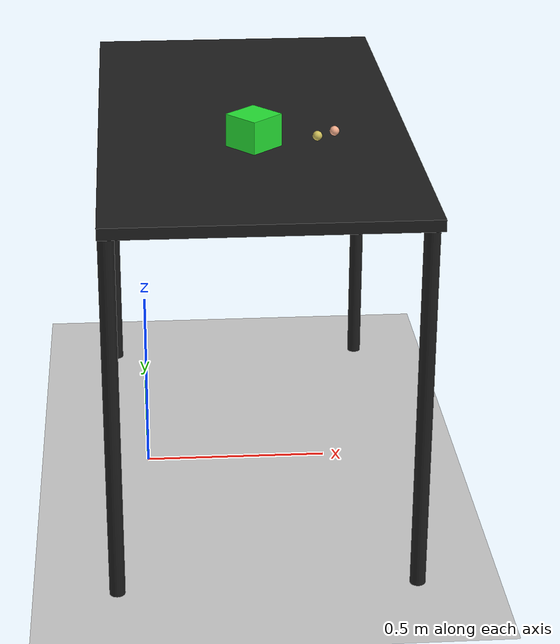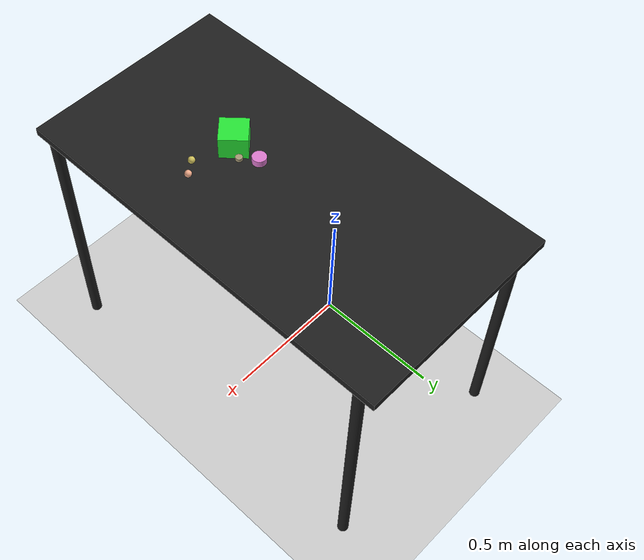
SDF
<?xml version="1.0" ?>
<sdf version="1.6">
  <world name="arm_world">
    <plugin filename="gz-sim-physics-system" name="gz::sim::systems::Physics">
      <engine>
        <filename>libgz-physics-bullet-featherstone-plugin.so</filename>
      </engine>
    </plugin>
    <plugin filename="gz-sim-user-commands-system" name="gz::sim::systems::UserCommands"/>
    <plugin filename="gz-sim-scene-broadcaster-system" name="gz::sim::systems::SceneBroadcaster"/>
    <plugin filename="gz-sim-sensors-system" name="gz::sim::systems::Sensors">
      <render_engine>ogre2</render_engine>
    </plugin>
    <gravity>0.0 0.0 -9.8</gravity>
    <scene>
      <shadows>false</shadows>
    </scene>
    <gui>
      <camera name="user_camera">
        <pose>0.75 -0.75 1.4 0 0.29 2.21</pose>
      </camera>
    </gui>
    <include>
      <uri>https://fuel.gazebosim.org/1.0/OpenRobotics/models/Sun</uri>
    </include>
    <model name="table">
      <static>true</static>
      <include>
        <uri>model://table</uri>
      </include>
      <pose>0.29 0 0 0 0 1.5708</pose>
    </model>
    <model name="ground_plane">
      <static>true</static>
      <link name="link">
        <collision name="collision">
          <geometry>
            <plane>
              <normal>0 0 1</normal>
            </plane>
          </geometry>
          <surface>
            <friction>
              <ode>
                <mu>1.0</mu>
                <mu2>1.0</mu2>
              </ode>
            </friction>
          </surface>
        </collision>
        <visual name="visual">
          <geometry>
            <plane>
              <normal>0 0 1</normal>
              <size>100 100</size>
            </plane>
          </geometry>
          <material>
            <ambient>0.8 0.8 0.8 1</ambient>
            <diffuse>0.8 0.8 0.8 1</diffuse>
            <specular>0.8 0.8 0.8 1</specular>
          </material>
        </visual>
      </link>
    </model>
    <model name="sphere_s_0">
      <pose>0.49 -0.215 1.05 0 0 4.62</pose>
      <link name="sphere_s_0_link">
        <inertial>
          <mass>0.05</mass>
          <inertia>
            <ixx>2.04e-7</ixx>
            <iyy>2.04e-7</iyy>
            <izz>3.9e-8</izz>
            <ixy>0</ixy>
            <ixz>0</ixz>
            <iyz>0</iyz>
          </inertia>
        </inertial>
        <collision name="sphere_s_0_collision">
          <geometry>
            <sphere>
              <radius>0.0125</radius>
            </sphere>
          </geometry>
          <surface>
            <friction>
              <ode>
                <mu>0.8</mu>
                <mu2>0.8</mu2>
                <fdir1>0 0 1</fdir1>
                <slip1>0.001</slip1>
                <slip2>0.001</slip2>
              </ode>
              <torsional>
                <coefficient>0.1</coefficient>
                <surface_radius>0.015</surface_radius>
                <use_patch_radius>true</use_patch_radius>
              </torsional>
            </friction>
            <contact>
              <ode>
                <kp>1e5</kp>
                <kd>10</kd>
                <max_vel>0.1</max_vel>
                <min_depth>0.001</min_depth>
                <soft_cfm>0.01</soft_cfm>
                <soft_erp>0.2</soft_erp>
              </ode>
            </contact>
            <bounce>
              <restitution_coefficient>0.2</restitution_coefficient>
              <threshold>0.01</threshold>
            </bounce>
          </surface>
        </collision>
        <visual name="sphere_s_0_visual">
          <geometry>
            <sphere>
              <radius>0.0125</radius>
            </sphere>
          </geometry>
          <material>
            <ambient>0.96 0.68 0.55 1</ambient>
            <diffuse>0.96 0.68 0.55 1</diffuse>
          </material>
        </visual>
        <velocity_decay>
          <linear>1</linear>
          <angular>1</angular>
        </velocity_decay>
      </link>
    </model>
    <model name="cube_l_1">
      <pose>0.285 -0.215 1.05 0 0 5.45</pose>
      <link name="cube_l_1_link">
        <inertial>
          <mass>0.05</mass>
          <inertia>
            <ixx>2.04e-7</ixx>
            <iyy>2.04e-7</iyy>
            <izz>3.9e-8</izz>
            <ixy>0</ixy>
            <ixz>0</ixz>
            <iyz>0</iyz>
          </inertia>
        </inertial>
        <collision name="cube_l_1_collision">
          <geometry>
            <box>
              <size>0.1 0.1 0.1</size>
            </box>
          </geometry>
          <surface>
            <friction>
              <ode>
                <mu>0.8</mu>
                <mu2>0.8</mu2>
                <fdir1>0 0 1</fdir1>
                <slip1>0.001</slip1>
                <slip2>0.001</slip2>
              </ode>
              <torsional>
                <coefficient>0.1</coefficient>
                <surface_radius>0.015</surface_radius>
                <use_patch_radius>true</use_patch_radius>
              </torsional>
            </friction>
            <contact>
              <ode>
                <kp>1e5</kp>
                <kd>10</kd>
                <max_vel>0.1</max_vel>
                <min_depth>0.001</min_depth>
                <soft_cfm>0.01</soft_cfm>
                <soft_erp>0.2</soft_erp>
              </ode>
            </contact>
            <bounce>
              <restitution_coefficient>0.2</restitution_coefficient>
              <threshold>0.01</threshold>
            </bounce>
          </surface>
        </collision>
        <visual name="cube_l_1_visual">
          <geometry>
            <box>
              <size>0.1 0.1 0.1</size>
            </box>
          </geometry>
          <material>
            <ambient>0.15 0.9 0.21 1</ambient>
            <diffuse>0.15 0.9 0.21 1</diffuse>
          </material>
        </visual>
        <velocity_decay>
          <linear>1</linear>
          <angular>1</angular>
        </velocity_decay>
      </link>
    </model>
    <model name="cylinder_s_2">
      <pose>0.331 -0.146 1.05 0 0 6.2</pose>
      <link name="cylinder_s_2_link">
        <inertial>
          <mass>0.05</mass>
          <inertia>
            <ixx>2.04e-7</ixx>
            <iyy>2.04e-7</iyy>
            <izz>3.9e-8</izz>
            <ixy>0</ixy>
            <ixz>0</ixz>
            <iyz>0</iyz>
          </inertia>
        </inertial>
        <collision name="cylinder_s_2_collision">
          <geometry>
            <cylinder>
              <radius>0.0125</radius>
              <length>0.0125</length>
            </cylinder>
          </geometry>
          <surface>
            <friction>
              <ode>
                <mu>0.8</mu>
                <mu2>0.8</mu2>
                <fdir1>0 0 1</fdir1>
                <slip1>0.001</slip1>
                <slip2>0.001</slip2>
              </ode>
              <torsional>
                <coefficient>0.1</coefficient>
                <surface_radius>0.015</surface_radius>
                <use_patch_radius>true</use_patch_radius>
              </torsional>
            </friction>
            <contact>
              <ode>
                <kp>1e5</kp>
                <kd>10</kd>
                <max_vel>0.1</max_vel>
                <min_depth>0.001</min_depth>
                <soft_cfm>0.01</soft_cfm>
                <soft_erp>0.2</soft_erp>
              </ode>
            </contact>
            <bounce>
              <restitution_coefficient>0.2</restitution_coefficient>
              <threshold>0.01</threshold>
            </bounce>
          </surface>
        </collision>
        <visual name="cylinder_s_2_visual">
          <geometry>
            <cylinder>
              <radius>0.0125</radius>
              <length>0.0125</length>
            </cylinder>
          </geometry>
          <material>
            <ambient>0.65 0.6 0.46 1</ambient>
            <diffuse>0.65 0.6 0.46 1</diffuse>
          </material>
        </visual>
        <velocity_decay>
          <linear>1</linear>
          <angular>1</angular>
        </velocity_decay>
      </link>
    </model>
    <model name="sphere_s_3">
      <pose>0.443 -0.25 1.05 0 0 3.14</pose>
      <link name="sphere_s_3_link">
        <inertial>
          <mass>0.05</mass>
          <inertia>
            <ixx>2.04e-7</ixx>
            <iyy>2.04e-7</iyy>
            <izz>3.9e-8</izz>
            <ixy>0</ixy>
            <ixz>0</ixz>
            <iyz>0</iyz>
          </inertia>
        </inertial>
        <collision name="sphere_s_3_collision">
          <geometry>
            <sphere>
              <radius>0.0125</radius>
            </sphere>
          </geometry>
          <surface>
            <friction>
              <ode>
                <mu>0.8</mu>
                <mu2>0.8</mu2>
                <fdir1>0 0 1</fdir1>
                <slip1>0.001</slip1>
                <slip2>0.001</slip2>
              </ode>
              <torsional>
                <coefficient>0.1</coefficient>
                <surface_radius>0.015</surface_radius>
                <use_patch_radius>true</use_patch_radius>
              </torsional>
            </friction>
            <contact>
              <ode>
                <kp>1e5</kp>
                <kd>10</kd>
                <max_vel>0.1</max_vel>
                <min_depth>0.001</min_depth>
                <soft_cfm>0.01</soft_cfm>
                <soft_erp>0.2</soft_erp>
              </ode>
            </contact>
            <bounce>
              <restitution_coefficient>0.2</restitution_coefficient>
              <threshold>0.01</threshold>
            </bounce>
          </surface>
        </collision>
        <visual name="sphere_s_3_visual">
          <geometry>
            <sphere>
              <radius>0.0125</radius>
            </sphere>
          </geometry>
          <material>
            <ambient>0.82 0.76 0.36 1</ambient>
            <diffuse>0.82 0.76 0.36 1</diffuse>
          </material>
        </visual>
        <velocity_decay>
          <linear>1</linear>
          <angular>1</angular>
        </velocity_decay>
      </link>
    </model>
    <model name="cylinder_m_4">
      <pose>0.288 -0.096 1.05 0 0 2.13</pose>
      <link name="cylinder_m_4_link">
        <inertial>
          <mass>0.05</mass>
          <inertia>
            <ixx>2.04e-7</ixx>
            <iyy>2.04e-7</iyy>
            <izz>3.9e-8</izz>
            <ixy>0</ixy>
            <ixz>0</ixz>
            <iyz>0</iyz>
          </inertia>
        </inertial>
        <collision name="cylinder_m_4_collision">
          <geometry>
            <cylinder>
              <radius>0.025</radius>
              <length>0.025</length>
            </cylinder>
          </geometry>
          <surface>
            <friction>
              <ode>
                <mu>0.8</mu>
                <mu2>0.8</mu2>
                <fdir1>0 0 1</fdir1>
                <slip1>0.001</slip1>
                <slip2>0.001</slip2>
              </ode>
              <torsional>
                <coefficient>0.1</coefficient>
                <surface_radius>0.015</surface_radius>
                <use_patch_radius>true</use_patch_radius>
              </torsional>
            </friction>
            <contact>
              <ode>
                <kp>1e5</kp>
                <kd>10</kd>
                <max_vel>0.1</max_vel>
                <min_depth>0.001</min_depth>
                <soft_cfm>0.01</soft_cfm>
                <soft_erp>0.2</soft_erp>
              </ode>
            </contact>
            <bounce>
              <restitution_coefficient>0.2</restitution_coefficient>
              <threshold>0.01</threshold>
            </bounce>
          </surface>
        </collision>
        <visual name="cylinder_m_4_visual">
          <geometry>
            <cylinder>
              <radius>0.025</radius>
              <length>0.025</length>
            </cylinder>
          </geometry>
          <material>
            <ambient>0.87 0.48 0.81 1</ambient>
            <diffuse>0.87 0.48 0.81 1</diffuse>
          </material>
        </visual>
        <velocity_decay>
          <linear>1</linear>
          <angular>1</angular>
        </velocity_decay>
      </link>
    </model>
  </world>
</sdf>

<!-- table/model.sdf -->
<sdf version="1.5">
  <model name="table">
    <static>true</static>
    <link name="link">
      <collision name="surface">
        <pose>0 0 1.0 0 0 0</pose>
        <geometry>
          <box>
            <size>1.5 0.8 0.03</size>
          </box>
        </geometry>
        <surface>
          <friction>
            <ode>
              <mu>0.6</mu>
              <mu2>0.6</mu2>
            </ode>
          </friction>
        </surface>
      </collision>
      <visual name="surface">
        <pose>0 0 1.0 0 0 0</pose>
        <geometry>
          <box>
            <size>1.5 0.8 0.03</size>
          </box>
        </geometry>
        <material>
          <script>
            <uri>file://media/materials/scripts/gazebo.material</uri>
            <name>Gazebo/Black</name>
          </script>
        </material>
      </visual>
      <collision name="front_left_leg">
        <pose>0.68 0.38 0.5 0 0 0</pose>
        <geometry>
          <cylinder>
            <radius>0.02</radius>
            <length>1.0</length>
          </cylinder>
        </geometry>
      </collision>
      <visual name="front_left_leg">
        <pose>0.68 0.38 0.5 0 0 0</pose>
        <geometry>
          <cylinder>
            <radius>0.02</radius>
            <length>1.0</length>
          </cylinder>
        </geometry>
        <material>
          <script>
            <uri>file://media/materials/scripts/gazebo.material</uri>
            <name>Gazebo/Black</name>
          </script>
        </material>
      </visual>
      <collision name="front_right_leg">
        <pose>0.68 -0.38 0.5 0 0 0</pose>
        <geometry>
          <cylinder>
            <radius>0.02</radius>
            <length>1.0</length>
          </cylinder>
        </geometry>
      </collision>
      <visual name="front_right_leg">
        <pose>0.68 -0.38 0.5 0 0 0</pose>
        <geometry>
          <cylinder>
            <radius>0.02</radius>
            <length>1.0</length>
          </cylinder>
        </geometry>
        <material>
          <script>
            <uri>file://media/materials/scripts/gazebo.material</uri>
            <name>Gazebo/Black</name>
          </script>
        </material>
      </visual>
      <collision name="back_right_leg">
        <pose>-0.68 -0.38 0.5 0 0 0</pose>
        <geometry>
          <cylinder>
            <radius>0.02</radius>
            <length>1.0</length>
          </cylinder>
        </geometry>
      </collision>
      <visual name="back_right_leg">
        <pose>-0.68 -0.38 0.5 0 0 0</pose>
        <geometry>
          <cylinder>
            <radius>0.02</radius>
            <length>1.0</length>
          </cylinder>
        </geometry>
        <material>
          <script>
            <uri>file://media/materials/scripts/gazebo.material</uri>
            <name>Gazebo/Black</name>
          </script>
        </material>
      </visual>
      <collision name="back_left_leg">
        <pose>-0.68 0.38 0.5 0 0 0</pose>
        <geometry>
          <cylinder>
            <radius>0.02</radius>
            <length>1.0</length>
          </cylinder>
        </geometry>
      </collision>
      <visual name="back_left_leg">
        <pose>-0.68 0.38 0.5 0 0 0</pose>
        <geometry>
          <cylinder>
            <radius>0.02</radius>
            <length>1.0</length>
          </cylinder>
        </geometry>
        <material>
          <script>
            <uri>file://media/materials/scripts/gazebo.material</uri>
            <name>Gazebo/Black</name>
          </script>
        </material>
      </visual>
    </link>
  </model>
</sdf>
